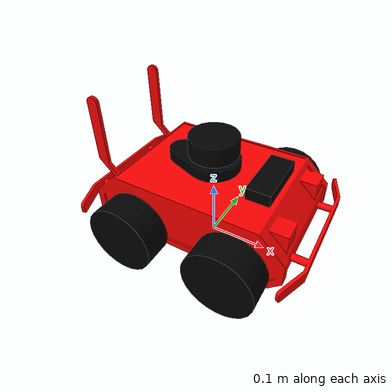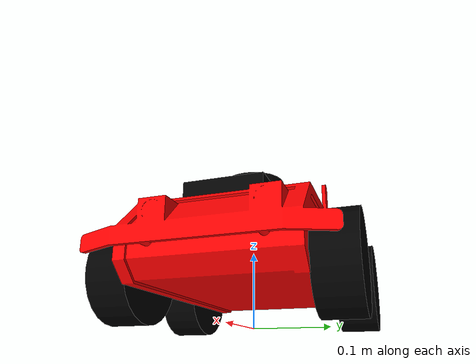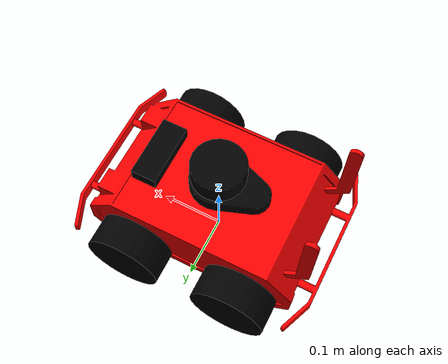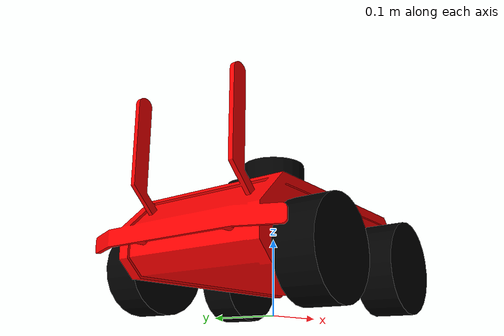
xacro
<?xml version="1.0"?>

<robot name="ares" xmlns:xacro="http://www.ros.org/wiki/xacro">

	<material name="red">
		<color rgba="1 0 0 1"/>
	</material>

	<material name="black">
		<color rgba="0 0 0 1"/>
	</material>

	<link name="base_link"/>

	<!--***********CHASSIS**********-->

	<xacro:property name="chassisWidth" value="0.203" />
	<xacro:property name="chassisHeight" value="0.093" />
	<xacro:property name="chassisLength" value="0.333" />
	<xacro:property name="wheelRadius" value="0.06" />
	<xacro:property name="wheelWidth" value="0.05" />

	<link name="chassis">
		<visual>
			<geometry>
				<mesh filename="package://ares_description/meshes/ares_body.dae" scale="0.001 0.001 0.001"/>
			</geometry>
			<origin rpy="0 0 1.57075" xyz="0 0 ${chassisHeight/2}"/>
			<material name="red"/>
		</visual>
		<collision>
			<geometry>
				<box size="${chassisLength} ${chassisWidth} ${chassisHeight}"/>
			</geometry>
			<origin rpy="0 0 0" xyz="0 0 ${chassisHeight/2}"/>
		</collision>
		<inertial>
			<mass value="5"/>
			<inertia ixx="0.046204" ixy="0.0" ixz="0.0"
               iyy="0.01717" iyz="0.0"
               izz="0.063374" />
		</inertial>
	</link>

	<joint name="base_joint" type="fixed">
    	<parent link="base_link"/>
    	<child link="chassis"/>
    	<origin xyz="0.0 0.0 0.044250" rpy="0 0 0"/>
  	</joint>

  	<!--***********LEFT REAR WHEEL**********-->

	<link name="left_rear_wheel_link">
		<visual>
			<geometry>
				<cylinder length="${wheelWidth}" radius="${wheelRadius}"/>
			</geometry>
			<origin rpy="1.57075 0 0" xyz="0 0 0"/>
			<material name="black"/>
		</visual>
		<collision>
			<geometry>
				<cylinder length="${wheelWidth}" radius="${wheelRadius}"/>
			</geometry>
			<origin rpy="1.57075 0 0" xyz="0 0 0"/>
		</collision>
		<inertial>
			<mass value="0.150"/>
			<inertia ixx="0.0002281" ixy="0.0" ixz="0.0"
               iyy="0.0002281" iyz="0.0"
               izz="0.00027" />
		</inertial>
	</link>

	<joint name="left_rear_wheel_joint" type="continuous">
		<parent link="chassis"/>
		<child link="left_rear_wheel_link"/>
		<axis xyz="0 1 0"/>
		<origin rpy="0 0 0" xyz="-0.089 0.12862 0.01575"/>
	</joint>

	<gazebo reference="left_rear_wheel_link">
		<mu1 value="0.8" />
    	<mu2 value="0.8" />
    	<kp value="1000000.0" />
    	<kd value="1.0" />
    	<maxVel value="0.0" />
  		<minDepth value="0.001"/>
		<material>Gazebo/Grey</material>
	</gazebo>

	<!--***********LEFT FRONT WHEEL**********-->

	<link name="left_front_wheel_link">
		<visual>
			<geometry>
				<cylinder length="${wheelWidth}" radius="${wheelRadius}"/>
			</geometry>
			<origin rpy="1.57075 0 0" xyz="0 0 0"/>
			<material name="black"/>
		</visual>
		<collision>
			<geometry>
				<cylinder length="${wheelWidth}" radius="${wheelRadius}"/>
			</geometry>
			<origin rpy="1.57075 0 0" xyz="0 0 0"/>
		</collision>
		<inertial>
			<mass value="0.150"/>
			<inertia ixx="0.0002281" ixy="0.0" ixz="0.0"
               iyy="0.0002281" iyz="0.0"
               izz="0.00027" />
		</inertial>
	</link>

	<joint name="left_front_wheel_joint" type="continuous">
		<parent link="chassis"/>
		<child link="left_front_wheel_link"/>
		<axis xyz="0 1 0"/>
		<origin rpy="0 0 0" xyz="0.089 0.12862 0.01575"/>
	</joint>

	<gazebo reference="left_front_wheel_link">
		<mu1 value="0.8" />
    	<mu2 value="0.8" />
    	<kp value="1000000.0" />
    	<kd value="1.0" />
    	<maxVel value="0.0" />
  		<minDepth value="0.001"/>
		<material>Gazebo/Grey</material>
	</gazebo>

	<!--***********RIGHT REAR WHEEL**********-->

	<link name="right_rear_wheel_link">
		<visual>
			<geometry>
				<cylinder length="${wheelWidth}" radius="${wheelRadius}"/>
			</geometry>
			<origin rpy="1.57075 0 0" xyz="0 0 0"/>
			<material name="black"/>
		</visual>
		<collision>
			<geometry>
				<cylinder length="${wheelWidth}" radius="${wheelRadius}"/>
			</geometry>
			<origin rpy="1.57075 0 0" xyz="0 0 0"/>
		</collision>
		<inertial>
			<mass value="0.150"/>
			<inertia ixx="0.0002281" ixy="0.0" ixz="0.0"
               iyy="0.0002281" iyz="0.0"
               izz="0.00027" />
		</inertial>
	</link>

	<joint name="right_rear_wheel_joint" type="continuous">
		<parent link="chassis"/>
		<child link="right_rear_wheel_link"/>
		<axis xyz="0 1 0"/>
		<origin rpy="0 0 0" xyz="-0.089 -0.12862 0.01575"/>
	</joint>

	<gazebo reference="right_rear_wheel_link">
		<mu1 value="0.8" />
    	<mu2 value="0.8" />
    	<kp value="1000000.0" />
    	<kd value="1.0" />
    	<maxVel value="0.0" />
  		<minDepth value="0.001"/>
		<material>Gazebo/Grey</material>
	</gazebo>

	<!--***********RIGHT FRONT WHEEL**********-->

	<link name="right_front_wheel_link">
		<visual>
			<geometry>
				<cylinder length="${wheelWidth}" radius="${wheelRadius}"/>
			</geometry>
			<origin rpy="1.57075 0 0" xyz="0 0 0"/>
			<material name="black"/>
		</visual>
		<collision>
			<geometry>
				<cylinder length="${wheelWidth}" radius="${wheelRadius}"/>
			</geometry>
			<origin rpy="1.57075 0 0" xyz="0 0 0"/>
		</collision>
		<inertial>
			<mass value="0.150"/>
			<inertia ixx="0.0002281" ixy="0.0" ixz="0.0"
               iyy="0.0002281" iyz="0.0"
               izz="0.00027" />
		</inertial>
	</link>

	<joint name="right_front_wheel_joint" type="continuous">
		<parent link="chassis"/>
		<child link="right_front_wheel_link"/>
		<axis xyz="0 1 0"/>
		<origin rpy="0 0 0" xyz="0.089 -0.12862 0.01575"/>
	</joint>

	<gazebo reference="right_front_wheel_link">
		<mu1 value="0.8" />
    	<mu2 value="0.8" />
    	<kp value="1000000.0" />
    	<kd value="1.0" />
    	<maxVel value="0.0" />
  		<minDepth value="0.001"/>
		<material>Gazebo/Grey</material>
	</gazebo>

	<!--***********GAZEBO CONTROLLER**********-->

	<gazebo>
		<plugin name="turtlebot3_burger_controller" filename="libgazebo_ros_diff_drive.so">
			<commandTopic>cmd_vel</commandTopic>
			<odometryTopic>odom</odometryTopic>
			<odometryFrame>odom</odometryFrame>
			<odometrySource>world</odometrySource>
			<publishOdomTF>true</publishOdomTF>
			<robotBaseFrame>base_link</robotBaseFrame>
			<publishWheelTF>false</publishWheelTF>
			<publishTf>true</publishTf>
			<publishWheelJointState>true</publishWheelJointState>
			<legacyMode>false</legacyMode>
			<updateRate>30</updateRate>
			<leftJoint>left_front_wheel_joint</leftJoint>
			<rightJoint>right_front_wheel_joint</rightJoint>
			<wheelSeparation>0.25724</wheelSeparation>
			<wheelDiameter>0.12</wheelDiameter>
			<wheelAcceleration>1</wheelAcceleration>
			<wheelTorque>10</wheelTorque>
			<rosDebugLevel>na</rosDebugLevel>
		</plugin>
	</gazebo>

	<!--***********IMU & MAGNETOMETER**********-->

	<link name="imu_link"/>

	<joint name="imu_joint" type="fixed">
		<parent link="chassis"/>
		<child link="imu_link"/>
		<origin xyz="0 0 0.006"/>
	</joint>

	<link name="mag_link"/>

	<joint name="mag_joint" type="fixed">
		<parent link="chassis"/>
		<child link="mag_link"/>
		<origin xyz="0 0 0.006"/>
	</joint>

	<gazebo reference="imu_link">
    	<plugin name="imu_plugin" filename="libgazebo_ros_imu.so">
      		<alwaysOn>true</alwaysOn>
      		<bodyName>imu_link</bodyName>
      		<frameName>imu_link</frameName>
      		<topicName>imu</topicName>
      		<serviceName>imu_service</serviceName>
      		<gaussianNoise>0.0</gaussianNoise>
      		<updateRate>5</updateRate>
      		<imu>
        		<noise>
	          		<type>gaussian</type>
	          		<rate>
	            		<mean>0.0</mean>
	            		<stddev>2e-4</stddev>
	            		<bias_mean>0.0000075</bias_mean>
	            		<bias_stddev>0.0000008</bias_stddev>
	          		</rate>
	          		<accel>
	            		<mean>0.0</mean>
	            		<stddev>1.7e-2</stddev>
	            		<bias_mean>0.1</bias_mean>
	            		<bias_stddev>0.001</bias_stddev>
	          		</accel>
        		</noise>
      		</imu>
    	</plugin>
  	</gazebo>

  	<!--***********LIDAR SCAN**********-->

	<link name="base_scan">
	    <visual>
	      <origin xyz="0 0 0.0" rpy="1.57075 0 3.1415"/>
	      <geometry>
	        <mesh filename="package://ares_description/meshes/lidar.stl" scale="0.001 0.001 0.001"/>
	      </geometry>
	      <material name="black"/>
	    </visual>

	    <collision>
	      <origin xyz="0 0 ${0.0315/2}" rpy="0 0 0"/>
	      <geometry>
	        <cylinder length="0.0315" radius="0.055"/>
	      </geometry>
	    </collision>

	    <inertial>
	      <mass value="0.114" />
	      <origin xyz="0 0 0" />
	      <inertia ixx="0.001" ixy="0.0" ixz="0.0"
	               iyy="0.001" iyz="0.0"
	               izz="0.001" />
	    </inertial>
  	</link>

  	<joint name="scan_joint" type="fixed">
    	<parent link="chassis"/>
    	<child link="base_scan"/>
    	<origin xyz="0 0 0.1" rpy="0 0 3.1415"/>
  	</joint>

	<gazebo reference="base_scan">
		<material>Gazebo/FlatBlack</material>
		<sensor type="ray" name="lds_lfcd_sensor">
			<pose>0 0 0 0 0 0</pose>
			<visualize>false</visualize>
			<update_rate>5</update_rate>
			<ray>
				<scan>
					<horizontal>
						<samples>360</samples>
						<resolution>1</resolution>
						<min_angle>0.0</min_angle>
						<max_angle>6.28319</max_angle>
					</horizontal>
				</scan>
				<range>
					<min>0.120</min>
					<max>3.5</max>
					<resolution>0.015</resolution>
				</range>
				<noise>
					<type>gaussian</type>
					<mean>0.0</mean>
					<stddev>0.01</stddev>
				</noise>
			</ray>
			<plugin name="gazebo_ros_lds_lfcd_controller" filename="libgazebo_ros_laser.so">
				<topicName>scan</topicName>
				<frameName>base_scan</frameName>
			</plugin>
		</sensor>
	</gazebo>

	<!--***********CAMERA**********-->

	<link name="camera_link">
		<visual>
			<geometry>
				<box size="0.04 0.1 0.02"/>
			</geometry>
			<origin rpy="0 0 0" xyz="-0.02 0 0.01"/>
			<material name="black"/>
		</visual>
		<collision>
			<geometry>
				<box size="0.04 0.1 0.04"/>
			</geometry>
			<origin rpy="0 0 0" xyz="0 0 0"/>
		</collision>
	</link>

	<joint name="camera_joint" type="fixed">
    	<parent link="chassis"/>
    	<child link="camera_link"/>
    	<origin xyz="0.12 0.0 0.1" rpy="0 0 0"/>
  	</joint>

					<!-- Noise is sampled independently per pixel on each frame.
					   That pixel's noise value is added to each of its color
					   channels, which at that point lie in the range [0,1]. -->

	<gazebo reference="camera">
  <sensor name="camera_link" type="depth">
    <update_rate>20</update_rate>
    <camera>
      <horizontal_fov>1.047198</horizontal_fov>
      <image>
        <width>640</width>
        <height>480</height>
        <format>R8G8B8</format>
      </image>
      <clip>
        <near>0.05</near>
        <far>3</far>
      </clip>
    </camera>
    <plugin name="camera_controller" filename="libgazebo_ros_openni_kinect.so">
      <baseline>0.2</baseline>
      <alwaysOn>true</alwaysOn>
      <updateRate>1.0</updateRate>
      <cameraName>camera_ir</cameraName>
      <imageTopicName>/camera/color/image_raw</imageTopicName>
      <cameraInfoTopicName>/camera/color/camera_info</cameraInfoTopicName>
      <depthImageTopicName>/camera/depth/image_raw</depthImageTopicName>
      <depthImageInfoTopicName>/camera/depth/camera_info</depthImageInfoTopicName>
      <pointCloudTopicName>/camera/depth/points</pointCloudTopicName>
      <frameName>camera</frameName>
      <pointCloudCutoff>0.5</pointCloudCutoff>
      <pointCloudCutoffMax>3.0</pointCloudCutoffMax>
      <distortionK1>0.00000001</distortionK1>
      <distortionK2>0.00000001</distortionK2>
      <distortionK3>0.00000001</distortionK3>
      <distortionT1>0.00000001</distortionT1>
      <distortionT2>0.00000001</distortionT2>
      <CxPrime>0</CxPrime>
      <Cx>0</Cx>
      <Cy>0</Cy>
      <focalLength>0</focalLength>
      <hackBaseline>0</hackBaseline>
    </plugin>
  </sensor>
</gazebo>

	<!--***********GAZEBO**********-->

  	<gazebo>
		<plugin name="gazebo_ros_control" filename="libgazebo_ros_control.so">
			<robotnamespace>/</robotnamespace>
		</plugin>
	</gazebo>

</robot>
